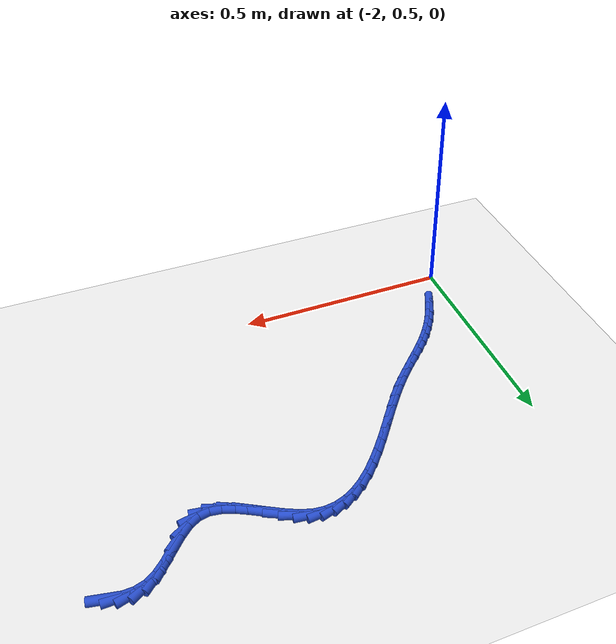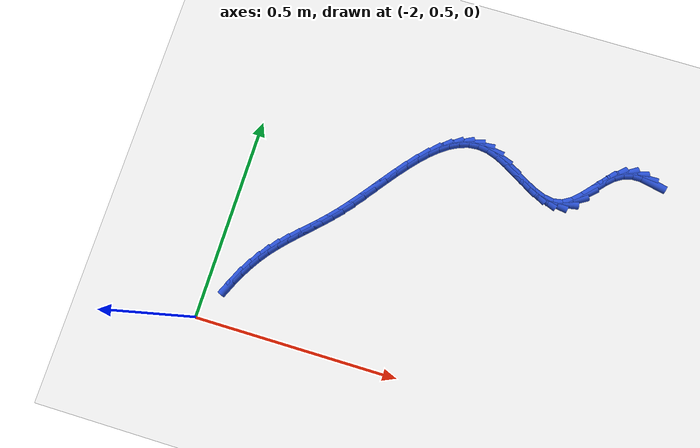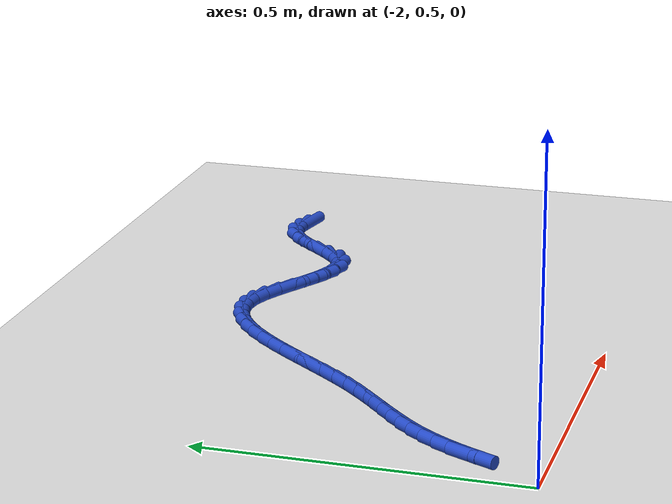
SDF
<sdf version="1.6">
 <world name="default">
  <model name="ground_plane">
   <static>1</static>
   <link name="link">
    <collision name="collision">
     <geometry><plane><normal>0 0 1</normal><size>100 100</size></plane></geometry>
     <surface><friction><ode><mu>100</mu><mu2>50</mu2></ode></friction></surface>
    </collision>
    <visual name="visual">
     <cast_shadows>0</cast_shadows>
     <geometry><plane><normal>0 0 1</normal><size>100 100</size></plane></geometry>
     <material>
      <script><uri>file://media/materials/scripts/gazebo.material</uri><name>Gazebo/WhiteGlow</name></script>
     </material>
    </visual>
   </link>
  </model>
  <model name="line">
   <link name="link_61">
    <pose>-1.0450939205840517 1.1278358511294306 0.01 0 1.57 -0.2023022781026082</pose>
    <collision name="collision">
     <geometry><cylinder><radius>0.01</radius><length>0.08</length></cylinder></geometry>
    </collision>
    <visual name="visual">
     <material>
      <script><name>Gazebo/Blue</name><uri>file://media/materials/scripts/gazebo.material</uri></script>
     </material>
     <geometry><cylinder><radius>0.01</radius><length>0.08</length></cylinder></geometry>
    </visual>
   </link>
   <link name="link_62">
    <pose>-1.0688769824779338 1.1327139483568016 0.01 0 1.57 0.014855945763422194</pose>
    <collision name="collision">
     <geometry><cylinder><radius>0.01</radius><length>0.08</length></cylinder></geometry>
    </collision>
    <visual name="visual">
     <material>
      <script><name>Gazebo/Blue</name><uri>file://media/materials/scripts/gazebo.material</uri></script>
     </material>
     <geometry><cylinder><radius>0.01</radius><length>0.08</length></cylinder></geometry>
    </visual>
   </link>
   <link name="link_63">
    <pose>-1.0918273739122868 1.1323729735017505 0.01 0 1.57 0.28051802848266894</pose>
    <collision name="collision">
     <geometry><cylinder><radius>0.01</radius><length>0.08</length></cylinder></geometry>
    </collision>
    <visual name="visual">
     <material>
      <script><name>Gazebo/Blue</name><uri>file://media/materials/scripts/gazebo.material</uri></script>
     </material>
     <geometry><cylinder><radius>0.01</radius><length>0.08</length></cylinder></geometry>
    </visual>
   </link>
   <link name="link_64">
    <pose>-1.113872088866176 1.1260215544498302 0.01 0 1.57 0.5576078184713305</pose>
    <collision name="collision">
     <geometry><cylinder><radius>0.01</radius><length>0.08</length></cylinder></geometry>
    </collision>
    <visual name="visual">
     <material>
      <script><name>Gazebo/Blue</name><uri>file://media/materials/scripts/gazebo.material</uri></script>
     </material>
     <geometry><cylinder><radius>0.01</radius><length>0.08</length></cylinder></geometry>
    </visual>
   </link>
   <link name="link_65">
    <pose>-1.1349402924138037 1.1128829580982396 0.01 0 1.57 0.7637106657214349</pose>
    <collision name="collision">
     <geometry><cylinder><radius>0.01</radius><length>0.08</length></cylinder></geometry>
    </collision>
    <visual name="visual">
     <material>
      <script><name>Gazebo/Blue</name><uri>file://media/materials/scripts/gazebo.material</uri></script>
     </material>
     <geometry><cylinder><radius>0.01</radius><length>0.08</length></cylinder></geometry>
    </visual>
   </link>
   <link name="link_66">
    <pose>-1.1551600725055178 1.0935217257317231 0.01 0 1.57 0.8503595775195396</pose>
    <collision name="collision">
     <geometry><cylinder><radius>0.01</radius><length>0.08</length></cylinder></geometry>
    </collision>
    <visual name="visual">
     <material>
      <script><name>Gazebo/Blue</name><uri>file://media/materials/scripts/gazebo.material</uri></script>
     </material>
     <geometry><cylinder><radius>0.01</radius><length>0.08</length></cylinder></geometry>
    </visual>
   </link>
   <link name="link_67">
    <pose>-1.175015571800816 1.0709031635505701 0.01 0 1.57 0.8473927391355018</pose>
    <collision name="collision">
     <geometry><cylinder><radius>0.01</radius><length>0.08</length></cylinder></geometry>
    </collision>
    <visual name="visual">
     <material>
      <script><name>Gazebo/Blue</name><uri>file://media/materials/scripts/gazebo.material</uri></script>
     </material>
     <geometry><cylinder><radius>0.01</radius><length>0.08</length></cylinder></geometry>
    </visual>
   </link>
   <link name="link_68">
    <pose>-1.1950279095822862 1.0482418994944798 0.01 0 1.57 0.755517350616917</pose>
    <collision name="collision">
     <geometry><cylinder><radius>0.01</radius><length>0.08</length></cylinder></geometry>
    </collision>
    <visual name="visual">
     <material>
      <script><name>Gazebo/Blue</name><uri>file://media/materials/scripts/gazebo.material</uri></script>
     </material>
     <geometry><cylinder><radius>0.01</radius><length>0.08</length></cylinder></geometry>
    </visual>
   </link>
   <link name="link_69">
    <pose>-1.2157182051325164 1.0287525615031514 0.01 0 1.57 0.5393829126443814</pose>
    <collision name="collision">
     <geometry><cylinder><radius>0.01</radius><length>0.08</length></cylinder></geometry>
    </collision>
    <visual name="visual">
     <material>
      <script><name>Gazebo/Blue</name><uri>file://media/materials/scripts/gazebo.material</uri></script>
     </material>
     <geometry><cylinder><radius>0.01</radius><length>0.08</length></cylinder></geometry>
    </visual>
   </link>
   <link name="link_70">
    <pose>-1.237607577734095 1.015649777516284 0.01 0 1.57 0.17322972556471875</pose>
    <collision name="collision">
     <geometry><cylinder><radius>0.01</radius><length>0.08</length></cylinder></geometry>
    </collision>
    <visual name="visual">
     <material>
      <script><name>Gazebo/Blue</name><uri>file://media/materials/scripts/gazebo.material</uri></script>
     </material>
     <geometry><cylinder><radius>0.01</radius><length>0.08</length></cylinder></geometry>
    </visual>
   </link>
   <link name="link_71">
    <pose>-1.2611154528167328 1.0115362855884427 0.01 0 1.57 -0.15930060286154848</pose>
    <collision name="collision">
     <geometry><cylinder><radius>0.01</radius><length>0.08</length></cylinder></geometry>
    </collision>
    <visual name="visual">
     <material>
      <script><name>Gazebo/Blue</name><uri>file://media/materials/scripts/gazebo.material</uri></script>
     </material>
     <geometry><cylinder><radius>0.01</radius><length>0.08</length></cylinder></geometry>
    </visual>
   </link>
   <link name="link_72">
    <pose>-1.2860850746495927 1.015547953219374 0.01 0 1.57 -0.3680241917864164</pose>
    <collision name="collision">
     <geometry><cylinder><radius>0.01</radius><length>0.08</length></cylinder></geometry>
    </collision>
    <visual name="visual">
     <material>
      <script><name>Gazebo/Blue</name><uri>file://media/materials/scripts/gazebo.material</uri></script>
     </material>
     <geometry><cylinder><radius>0.01</radius><length>0.08</length></cylinder></geometry>
    </visual>
   </link>
   <link name="link_73">
    <pose>-1.312156998938351 1.0256010748636348 0.01 0 1.57 -0.4814533472742842</pose>
    <collision name="collision">
     <geometry><cylinder><radius>0.01</radius><length>0.08</length></cylinder></geometry>
    </collision>
    <visual name="visual">
     <material>
      <script><name>Gazebo/Blue</name><uri>file://media/materials/scripts/gazebo.material</uri></script>
     </material>
     <geometry><cylinder><radius>0.01</radius><length>0.08</length></cylinder></geometry>
    </visual>
   </link>
   <link name="link_74">
    <pose>-1.3389715571163774 1.0396105955337815 0.01 0 1.57 -0.5285034687657213</pose>
    <collision name="collision">
     <geometry><cylinder><radius>0.01</radius><length>0.08</length></cylinder></geometry>
    </collision>
    <visual name="visual">
     <material>
      <script><name>Gazebo/Blue</name><uri>file://media/materials/scripts/gazebo.material</uri></script>
     </material>
     <geometry><cylinder><radius>0.01</radius><length>0.08</length></cylinder></geometry>
    </visual>
   </link>
   <link name="link_75">
    <pose>-1.3661690806170408 1.0554914602423708 0.01 0 1.57 -0.5222533344221536</pose>
    <collision name="collision">
     <geometry><cylinder><radius>0.01</radius><length>0.08</length></cylinder></geometry>
    </collision>
    <visual name="visual">
     <material>
      <script><name>Gazebo/Blue</name><uri>file://media/materials/scripts/gazebo.material</uri></script>
     </material>
     <geometry><cylinder><radius>0.01</radius><length>0.08</length></cylinder></geometry>
    </visual>
   </link>
   <link name="link_76">
    <pose>-1.3933899008737094 1.0711586140019587 0.01 0 1.57 -0.46144804787417953</pose>
    <collision name="collision">
     <geometry><cylinder><radius>0.01</radius><length>0.08</length></cylinder></geometry>
    </collision>
    <visual name="visual">
     <material>
      <script><name>Gazebo/Blue</name><uri>file://media/materials/scripts/gazebo.material</uri></script>
     </material>
     <geometry><cylinder><radius>0.01</radius><length>0.08</length></cylinder></geometry>
    </visual>
   </link>
   <link name="link_77">
    <pose>-1.4202743493197523 1.0845270018251014 0.01 0 1.57 -0.33052075730867514</pose>
    <collision name="collision">
     <geometry><cylinder><radius>0.01</radius><length>0.08</length></cylinder></geometry>
    </collision>
    <visual name="visual">
     <material>
      <script><name>Gazebo/Blue</name><uri>file://media/materials/scripts/gazebo.material</uri></script>
     </material>
     <geometry><cylinder><radius>0.01</radius><length>0.08</length></cylinder></geometry>
    </visual>
   </link>
   <link name="link_78">
    <pose>-1.4464629099650776 1.0935124757365826 0.01 0 1.57 -0.12413352134393098</pose>
    <collision name="collision">
     <geometry><cylinder><radius>0.01</radius><length>0.08</length></cylinder></geometry>
    </collision>
    <visual name="visual">
     <material>
      <script><name>Gazebo/Blue</name><uri>file://media/materials/scripts/gazebo.material</uri></script>
     </material>
     <geometry><cylinder><radius>0.01</radius><length>0.08</length></cylinder></geometry>
    </visual>
   </link>
   <link name="link_79">
    <pose>-1.4717021826323473 1.0966617078135295 0.01 0 1.57 0.09863293272439963</pose>
    <collision name="collision">
     <geometry><cylinder><radius>0.01</radius><length>0.08</length></cylinder></geometry>
    </collision>
    <visual name="visual">
     <material>
      <script><name>Gazebo/Blue</name><uri>file://media/materials/scripts/gazebo.material</uri></script>
     </material>
     <geometry><cylinder><radius>0.01</radius><length>0.08</length></cylinder></geometry>
    </visual>
   </link>
   <link name="link_80">
    <pose>-1.496030285971788 1.0942543439216377 0.01 0 1.57 0.3045942322500064</pose>
    <collision name="collision">
     <geometry><cylinder><radius>0.01</radius><length>0.08</length></cylinder></geometry>
    </collision>
    <visual name="visual">
     <material>
      <script><name>Gazebo/Blue</name><uri>file://media/materials/scripts/gazebo.material</uri></script>
     </material>
     <geometry><cylinder><radius>0.01</radius><length>0.08</length></cylinder></geometry>
    </visual>
   </link>
   <link name="link_81">
    <pose>-1.5195349595253058 1.0868650081459335 0.01 0 1.57 0.4780250759023559</pose>
    <collision name="collision">
     <geometry><cylinder><radius>0.01</radius><length>0.08</length></cylinder></geometry>
    </collision>
    <visual name="visual">
     <material>
      <script><name>Gazebo/Blue</name><uri>file://media/materials/scripts/gazebo.material</uri></script>
     </material>
     <geometry><cylinder><radius>0.01</radius><length>0.08</length></cylinder></geometry>
    </visual>
   </link>
   <link name="link_82">
    <pose>-1.542303942834812 1.0750683245714436 0.01 0 1.57 0.6151021428546527</pose>
    <collision name="collision">
     <geometry><cylinder><radius>0.01</radius><length>0.08</length></cylinder></geometry>
    </collision>
    <visual name="visual">
     <material>
      <script><name>Gazebo/Blue</name><uri>file://media/materials/scripts/gazebo.material</uri></script>
     </material>
     <geometry><cylinder><radius>0.01</radius><length>0.08</length></cylinder></geometry>
    </visual>
   </link>
   <link name="link_83">
    <pose>-1.564424975442214 1.059438917283195 0.01 0 1.57 0.7194020563652869</pose>
    <collision name="collision">
     <geometry><cylinder><radius>0.01</radius><length>0.08</length></cylinder></geometry>
    </collision>
    <visual name="visual">
     <material>
      <script><name>Gazebo/Blue</name><uri>file://media/materials/scripts/gazebo.material</uri></script>
     </material>
     <geometry><cylinder><radius>0.01</radius><length>0.08</length></cylinder></geometry>
    </visual>
   </link>
   <link name="link_84">
    <pose>-1.5859857968894213 1.0405514103662141 0.01 0 1.57 0.796711327840984</pose>
    <collision name="collision">
     <geometry><cylinder><radius>0.01</radius><length>0.08</length></cylinder></geometry>
    </collision>
    <visual name="visual">
     <material>
      <script><name>Gazebo/Blue</name><uri>file://media/materials/scripts/gazebo.material</uri></script>
     </material>
     <geometry><cylinder><radius>0.01</radius><length>0.08</length></cylinder></geometry>
    </visual>
   </link>
   <link name="link_85">
    <pose>-1.6070741467183427 1.0189804279055281 0.01 0 1.57 0.8523548122086584</pose>
    <collision name="collision">
     <geometry><cylinder><radius>0.01</radius><length>0.08</length></cylinder></geometry>
    </collision>
    <visual name="visual">
     <material>
      <script><name>Gazebo/Blue</name><uri>file://media/materials/scripts/gazebo.material</uri></script>
     </material>
     <geometry><cylinder><radius>0.01</radius><length>0.08</length></cylinder></geometry>
    </visual>
   </link>
   <link name="link_86">
    <pose>-1.6277777644708866 0.9953005939861628 0.01 0 1.57 0.8903891042943141</pose>
    <collision name="collision">
     <geometry><cylinder><radius>0.01</radius><length>0.08</length></cylinder></geometry>
    </collision>
    <visual name="visual">
     <material>
      <script><name>Gazebo/Blue</name><uri>file://media/materials/scripts/gazebo.material</uri></script>
     </material>
     <geometry><cylinder><radius>0.01</radius><length>0.08</length></cylinder></geometry>
    </visual>
   </link>
   <link name="link_87">
    <pose>-1.6481843896889625 0.9700865326931458 0.01 0 1.57 0.9135714779238321</pose>
    <collision name="collision">
     <geometry><cylinder><radius>0.01</radius><length>0.08</length></cylinder></geometry>
    </collision>
    <visual name="visual">
     <material>
      <script><name>Gazebo/Blue</name><uri>file://media/materials/scripts/gazebo.material</uri></script>
     </material>
     <geometry><cylinder><radius>0.01</radius><length>0.08</length></cylinder></geometry>
    </visual>
   </link>
   <link name="link_88">
    <pose>-1.668381761914479 0.9439128681115037 0.01 0 1.57 0.9235255876927655</pose>
    <collision name="collision">
     <geometry><cylinder><radius>0.01</radius><length>0.08</length></cylinder></geometry>
    </collision>
    <visual name="visual">
     <material>
      <script><name>Gazebo/Blue</name><uri>file://media/materials/scripts/gazebo.material</uri></script>
     </material>
     <geometry><cylinder><radius>0.01</radius><length>0.08</length></cylinder></geometry>
    </visual>
   </link>
   <link name="link_89">
    <pose>-1.6884576206893456 0.9173542243262625 0.01 0 1.57 0.9208863182405773</pose>
    <collision name="collision">
     <geometry><cylinder><radius>0.01</radius><length>0.08</length></cylinder></geometry>
    </collision>
    <visual name="visual">
     <material>
      <script><name>Gazebo/Blue</name><uri>file://media/materials/scripts/gazebo.material</uri></script>
     </material>
     <geometry><cylinder><radius>0.01</radius><length>0.08</length></cylinder></geometry>
    </visual>
   </link>
   <link name="link_90">
    <pose>-1.7084997055554698 0.8909852254224491 0.01 0 1.57 0.9053573917706076</pose>
    <collision name="collision">
     <geometry><cylinder><radius>0.01</radius><length>0.08</length></cylinder></geometry>
    </collision>
    <visual name="visual">
     <material>
      <script><name>Gazebo/Blue</name><uri>file://media/materials/scripts/gazebo.material</uri></script>
     </material>
     <geometry><cylinder><radius>0.01</radius><length>0.08</length></cylinder></geometry>
    </visual>
   </link>
   <link name="link_91">
    <pose>-1.7285957560547616 0.8653804954850906 0.01 0 1.57 0.875663577330921</pose>
    <collision name="collision">
     <geometry><cylinder><radius>0.01</radius><length>0.08</length></cylinder></geometry>
    </collision>
    <visual name="visual">
     <material>
      <script><name>Gazebo/Blue</name><uri>file://media/materials/scripts/gazebo.material</uri></script>
     </material>
     <geometry><cylinder><radius>0.01</radius><length>0.08</length></cylinder></geometry>
    </visual>
   </link>
   <link name="link_92">
    <pose>-1.7488335117291296 0.8411146585992133 0.01 0 1.57 0.834019780784127</pose>
    <collision name="collision">
     <geometry><cylinder><radius>0.01</radius><length>0.08</length></cylinder></geometry>
    </collision>
    <visual name="visual">
     <material>
      <script><name>Gazebo/Blue</name><uri>file://media/materials/scripts/gazebo.material</uri></script>
     </material>
     <geometry><cylinder><radius>0.01</radius><length>0.08</length></cylinder></geometry>
    </visual>
   </link>
   <link name="link_93">
    <pose>-1.7692540442345712 0.818605151730691 0.01 0 1.57 0.7993511200845225</pose>
    <collision name="collision">
     <geometry><cylinder><radius>0.01</radius><length>0.08</length></cylinder></geometry>
    </collision>
    <visual name="visual">
     <material>
      <script><name>Gazebo/Blue</name><uri>file://media/materials/scripts/gazebo.material</uri></script>
     </material>
     <geometry><cylinder><radius>0.01</radius><length>0.08</length></cylinder></geometry>
    </visual>
   </link>
   <link name="link_94">
    <pose>-1.7896953250626744 0.7975853283665906 0.01 0 1.57 0.7788871498617902</pose>
    <collision name="collision">
     <geometry><cylinder><radius>0.01</radius><length>0.08</length></cylinder></geometry>
    </collision>
    <visual name="visual">
     <material>
      <script><name>Gazebo/Blue</name><uri>file://media/materials/scripts/gazebo.material</uri></script>
     </material>
     <geometry><cylinder><radius>0.01</radius><length>0.08</length></cylinder></geometry>
    </visual>
   </link>
   <link name="link_95">
    <pose>-1.809940088374337 0.7776024912074154 0.01 0 1.57 0.7743756186206082</pose>
    <collision name="collision">
     <geometry><cylinder><radius>0.01</radius><length>0.08</length></cylinder></geometry>
    </collision>
    <visual name="visual">
     <material>
      <script><name>Gazebo/Blue</name><uri>file://media/materials/scripts/gazebo.material</uri></script>
     </material>
     <geometry><cylinder><radius>0.01</radius><length>0.08</length></cylinder></geometry>
    </visual>
   </link>
   <link name="link_96">
    <pose>-1.8297710672021361 0.7582039391532579 0.01 0 1.57 0.7871409763776249</pose>
    <collision name="collision">
     <geometry><cylinder><radius>0.01</radius><length>0.08</length></cylinder></geometry>
    </collision>
    <visual name="visual">
     <material>
      <script><name>Gazebo/Blue</name><uri>file://media/materials/scripts/gazebo.material</uri></script>
     </material>
     <geometry><cylinder><radius>0.01</radius><length>0.08</length></cylinder></geometry>
    </visual>
   </link>
   <link name="link_97">
    <pose>-1.8489709945786512 0.7389369711042116 0.01 0 1.57 0.817977200252877</pose>
    <collision name="collision">
     <geometry><cylinder><radius>0.01</radius><length>0.08</length></cylinder></geometry>
    </collision>
    <visual name="visual">
     <material>
      <script><name>Gazebo/Blue</name><uri>file://media/materials/scripts/gazebo.material</uri></script>
     </material>
     <geometry><cylinder><radius>0.01</radius><length>0.08</length></cylinder></geometry>
    </visual>
   </link>
   <link name="link_98">
    <pose>-1.8673226035364605 0.7193488859603688 0.01 0 1.57 0.8669182730776137</pose>
    <collision name="collision">
     <geometry><cylinder><radius>0.01</radius><length>0.08</length></cylinder></geometry>
    </collision>
    <visual name="visual">
     <material>
      <script><name>Gazebo/Blue</name><uri>file://media/materials/scripts/gazebo.material</uri></script>
     </material>
     <geometry><cylinder><radius>0.01</radius><length>0.08</length></cylinder></geometry>
    </visual>
   </link>
   <link name="link_99">
    <pose>-1.8846086271081426 0.6989869826218229 0.01 0 1.57 0.9311084158270825</pose>
    <collision name="collision">
     <geometry><cylinder><radius>0.01</radius><length>0.08</length></cylinder></geometry>
    </collision>
    <visual name="visual">
     <material>
      <script><name>Gazebo/Blue</name><uri>file://media/materials/scripts/gazebo.material</uri></script>
     </material>
     <geometry><cylinder><radius>0.01</radius><length>0.08</length></cylinder></geometry>
    </visual>
   </link>
   <link name="link_100">
    <pose>-1.9006360514122762 0.6774464492296507 0.01 0 1.57 0.9955039667200697</pose>
    <collision name="collision">
     <geometry><cylinder><radius>0.01</radius><length>0.08</length></cylinder></geometry>
    </collision>
    <visual name="visual">
     <material>
      <script><name>Gazebo/Blue</name><uri>file://media/materials/scripts/gazebo.material</uri></script>
     </material>
     <geometry><cylinder><radius>0.01</radius><length>0.08</length></cylinder></geometry>
    </visual>
   </link>
   <link name="link_101">
    <pose>-1.9153956783561674 0.6546854297402394 0.01 0 1.57 1.0537311695550933</pose>
    <collision name="collision">
     <geometry><cylinder><radius>0.01</radius><length>0.08</length></cylinder></geometry>
    </collision>
    <visual name="visual">
     <material>
      <script><name>Gazebo/Blue</name><uri>file://media/materials/scripts/gazebo.material</uri></script>
     </material>
     <geometry><cylinder><radius>0.01</radius><length>0.08</length></cylinder></geometry>
    </visual>
   </link>
   <link name="link_102">
    <pose>-1.9289625196238471 0.6308283456010464 0.01 0 1.57 1.1060031205479945</pose>
    <collision name="collision">
     <geometry><cylinder><radius>0.01</radius><length>0.08</length></cylinder></geometry>
    </collision>
    <visual name="visual">
     <material>
      <script><name>Gazebo/Blue</name><uri>file://media/materials/scripts/gazebo.material</uri></script>
     </material>
     <geometry><cylinder><radius>0.01</radius><length>0.08</length></cylinder></geometry>
    </visual>
   </link>
   <link name="link_103">
    <pose>-1.9414120247846847 0.6060004828916161 0.01 0 1.57 1.1526618202301682</pose>
    <collision name="collision">
     <geometry><cylinder><radius>0.01</radius><length>0.08</length></cylinder></geometry>
    </collision>
    <visual name="visual">
     <material>
      <script><name>Gazebo/Blue</name><uri>file://media/materials/scripts/gazebo.material</uri></script>
     </material>
     <geometry><cylinder><radius>0.01</radius><length>0.08</length></cylinder></geometry>
    </visual>
   </link>
  </model>
 </world>
</sdf>
